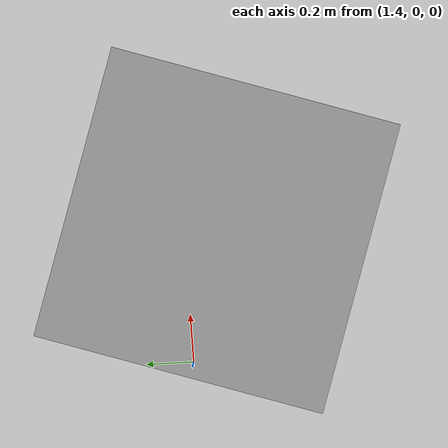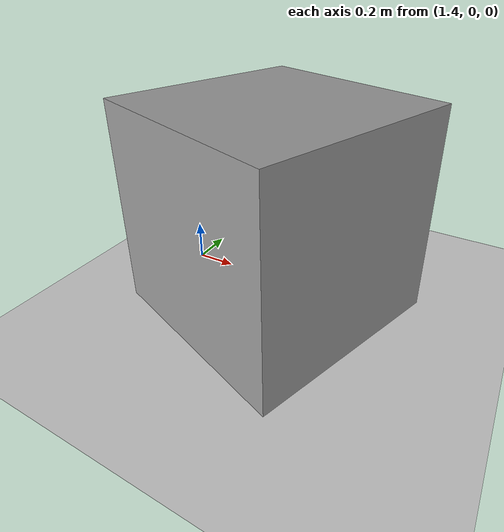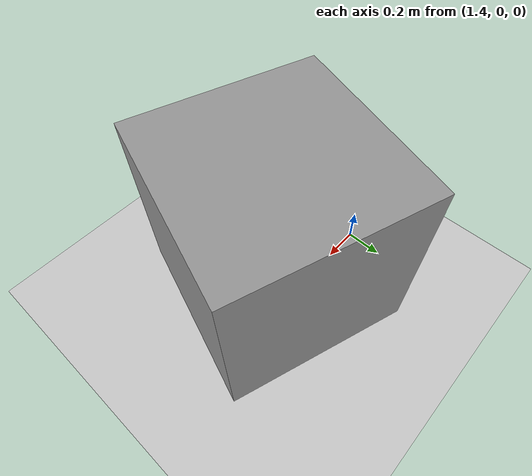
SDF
<sdf version="1.7">
 <world name="default">
  <model name="ground_plane">
   <static>1</static>
   <link name="link">
    <collision name="collision">
     <geometry><plane><normal>0 0 1</normal><size>100 100</size></plane></geometry>
     <surface><friction><ode><mu>100</mu><mu2>50</mu2></ode></friction></surface>
    </collision>
    <visual name="visual">
     <cast_shadows>0</cast_shadows>
     <geometry><plane><normal>0 0 1</normal><size>100 100</size></plane></geometry>
     <material>
      <script><uri>file://media/materials/scripts/gazebo.material</uri><name>Gazebo/Grey</name></script>
     </material>
    </visual>
   </link>
  </model>
  <gravity>0 0 -9.8</gravity>
  <magnetic_field>6e-06 2.3e-05 -4.2e-05</magnetic_field>
  <atmosphere type="adiabatic"/>
  <physics type="ode">
   <max_step_size>0.001</max_step_size>
   <real_time_factor>1</real_time_factor>
   <real_time_update_rate>1000</real_time_update_rate>
  </physics>
  <scene><ambient>0.4 0.4 0.4 1</ambient><background>0.7 0.7 0.7 1</background><shadows>1</shadows></scene>
  <audio><device>default</device></audio>
  <spherical_coordinates>
   <surface_model>EARTH_WGS84</surface_model>
   <latitude_deg>0</latitude_deg>
   <longitude_deg>0</longitude_deg>
   <elevation>0</elevation>
   <heading_deg>0</heading_deg>
  </spherical_coordinates>
  <model name="unit_box">
   <pose>1.95055 -0.135258 0.499999 -5e-06 3e-06 -0.328437</pose>
   <link name="link">
    <inertial>
     <mass>1</mass>
     <inertia>
      <ixx>0.166667</ixx>
      <ixy>0</ixy>
      <ixz>0</ixz>
      <iyy>0.166667</iyy>
      <iyz>0</iyz>
      <izz>0.166667</izz>
     </inertia>
    </inertial>
    <collision name="collision"><geometry><box><size>1 1 1</size></box></geometry></collision>
    <visual name="visual">
     <geometry><box><size>1 1 1</size></box></geometry>
     <material>
      <script><name>Gazebo/Grey</name><uri>file://media/materials/scripts/gazebo.material</uri></script>
     </material>
    </visual>
   </link>
  </model>
  <light name="user_point_light_0" type="point">
   <pose>1.97085 -0.134665 1 0 -0 0</pose>
   <diffuse>0.5 0.5 0.5 1</diffuse>
   <specular>0.1 0.1 0.1 1</specular>
   <attenuation>
    <range>20</range>
    <constant>0.5</constant>
    <linear>0.01</linear>
    <quadratic>0.001</quadratic>
   </attenuation>
   <cast_shadows>0</cast_shadows>
   <direction>0 0 -1</direction>
  </light>
  <light name="user_directional_light_0" type="directional">
   <pose>-3.44992 -0.702241 1 0 -0 0</pose>
   <diffuse>0.5 0.5 0.5 1</diffuse>
   <specular>0.1 0.1 0.1 1</specular>
   <direction>0.1 0.1 -0.9</direction>
   <attenuation>
    <range>20</range>
    <constant>0.5</constant>
    <linear>0.01</linear>
    <quadratic>0.001</quadratic>
   </attenuation>
  </light>
 </world>
</sdf>
